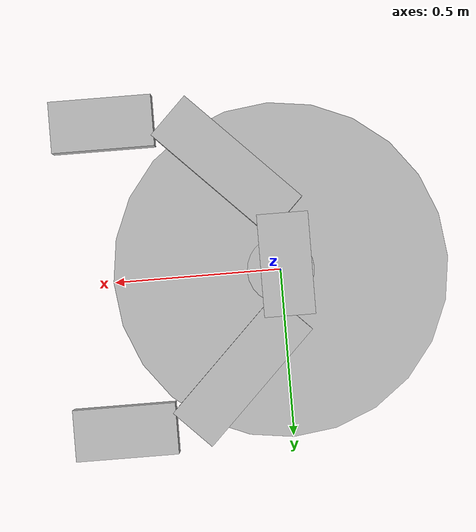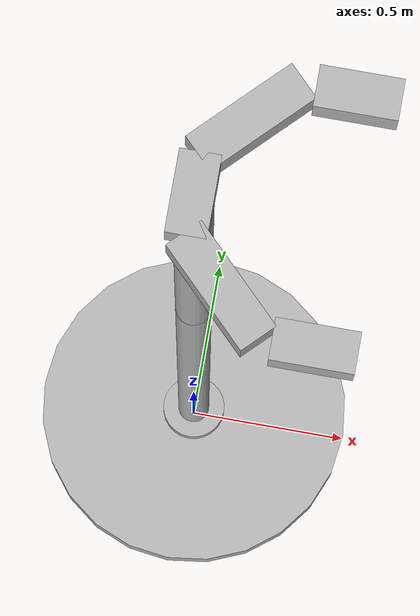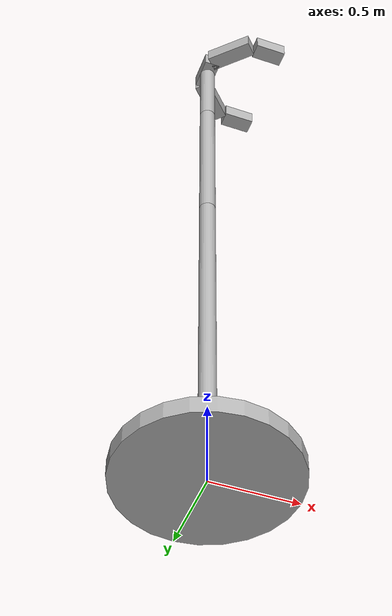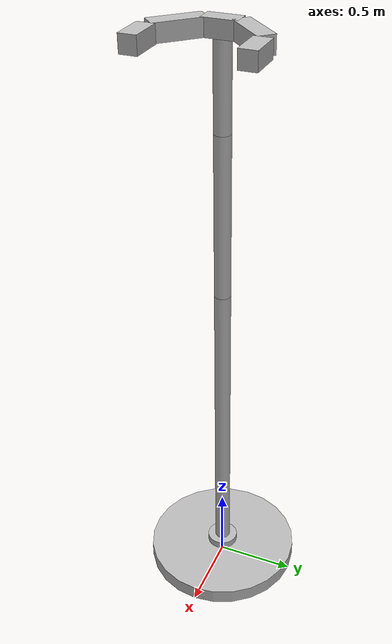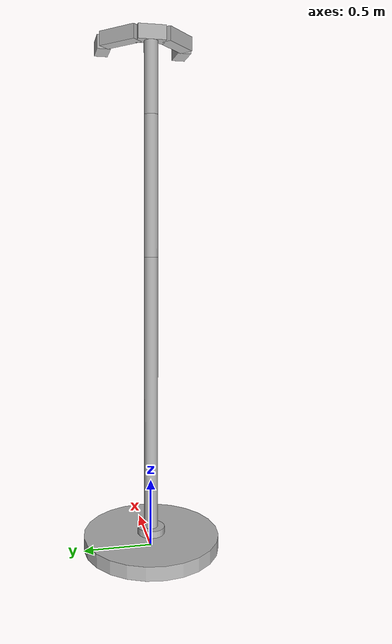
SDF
<?xml version='1.0'?>
<sdf version='1.4'>
    <model name="arm_robot">
        <static>false</static>
        <self_collide>1</self_collide>
        <link name='base'>
            <pose>0 0 .05 0 0 0</pose>
            <inertial>
                <mass>50.0</mass>
            </inertial>
            <collision name='collision'>
                <geometry>
                    <cylinder>
                        <radius>.5</radius>
                        <length>.1</length>
                    </cylinder>
                </geometry>
            </collision>

            <visual name='visual'>
                <geometry>
                    <cylinder>
                        <radius>.5</radius>
                        <length>.1</length>
                    </cylinder>
                </geometry>
            </visual>
        </link>
        <link name='arm1'>
            <pose>0 0 .125 0 0 0</pose>
            <inertial>
                <mass>.05</mass>
            </inertial>
            <collision name='collision'>
                <geometry>
                    <cylinder>
                        <radius>.1</radius>
                        <length>.05</length>
                    </cylinder>
                </geometry>
            </collision>

            <visual name='visual'>
                <geometry>
                    <cylinder>
                        <radius>.1</radius>
                        <length>.05</length>
                    </cylinder>
                </geometry>
            </visual>
        </link>

        <joint type="revolute" name="base_arm1_joint">
            <pose>0 0 -0.025 0 0 0</pose>
            <child>arm1</child>
            <parent>base</parent>
            <axis>
                <xyz>0 0 1</xyz>
                <dynamics>
                    <damping>
                        2.0
                    </damping>
                    <friction>
                        0.7
                    </friction>
                </dynamics>
                <limit>
                    <effort>100</effort>
                    <velocity>1.0</velocity>
                </limit>
            </axis>
        </joint>

        <link name='arm2'>
            <pose>0 0 1.15 0 0 0</pose>
            <inertial>
                <mass>1.0</mass>
            </inertial>
            <collision name='collision'>
                <geometry>
                    <cylinder>
                        <radius>.05</radius>
                        <length>2.0</length>
                    </cylinder>
                </geometry>
            </collision>

            <visual name='visual'>
                <geometry>
                    <cylinder>
                        <radius>.05</radius>
                        <length>2.0</length>
                    </cylinder>
                </geometry>
            </visual>
        </link>

         <joint type="revolute" name="arm1_arm2_joint">
            <pose>0 0 -1 0 0 0</pose>
            <child>arm2</child>
            <parent>arm1</parent>
            <axis>
                <xyz>1 0 0</xyz>
                <limit>
                        <lower>-1.0</lower>
                        <upper>1.0</upper>
                        <effort>100</effort>
                        <velocity>1.0</velocity>
                </limit>
                <dynamics>
                    <damping>
                        1.0
                    </damping>
                    <friction>
                        0.3
                    </friction>
                </dynamics>
            </axis>
        </joint>

        <link name='arm3'>
            <pose>0 0 2.65 0 0 0</pose>
            <inertial>
                <mass>0.5</mass>
            </inertial>
            <collision name='collision'>
                <geometry>
                    <cylinder>
                        <radius>.05</radius>
                        <length>1.0</length>
                    </cylinder>
                </geometry>
            </collision>

            <visual name='visual'>
                <geometry>
                    <cylinder>
                        <radius>.05</radius>
                        <length>1.0</length>
                    </cylinder>
                </geometry>
            </visual>
        </link>

         <joint type="revolute" name="arm2_arm3_joint">
            <pose>0 0 -0.5 0 0 0</pose>
            <child>arm3</child>
            <parent>arm2</parent>
            <axis>
                <xyz>1 0 0</xyz>
                <dynamics>
                    <damping>
                        1.0
                    </damping>
                    <friction>
                        0.3
                    </friction>
                </dynamics>
                <limit>
                    <effort>100</effort>
                    <velocity>1.0</velocity>
                </limit>
            </axis>
        </joint>

        <link name='arm4'>
            <pose>0 0 3.4 0 0 0</pose>
            <inertial>
                <mass>.25</mass>
            </inertial>
            <collision name='collision'>
                <geometry>
                    <cylinder>
                        <radius>.05</radius>
                        <length>.5</length>
                    </cylinder>
                </geometry>
            </collision>

            <visual name='visual'>
                <geometry>
                    <cylinder>
                        <radius>.05</radius>
                        <length>.5</length>
                    </cylinder>
                </geometry>
            </visual>
        </link>

         <joint type="revolute" name="arm3_arm4_joint">
            <pose>0 0 -0.25 0 0 0</pose>
            <child>arm4</child>
            <parent>arm3</parent>
            <axis>
                <xyz>1 0 0</xyz>
                <dynamics>
                    <damping>
                        1.0
                    </damping>
                    <friction>
                        0.3
                    </friction>
                </dynamics>
                <limit>
                    <effort>100</effort>
                    <velocity>1.0</velocity>
                </limit>
            </axis>
        </joint>

        <link name="arm5">
            <pose>0 0 3.66 0 0 0</pose>
            <inertial>
                <mass>.005</mass>
            </inertial>
            <collision name="collision">
                <geometry>
                    <cylinder>
                        <radius>.05</radius>
                        <length>.02</length>
                    </cylinder>
                </geometry>
            </collision>
            <visual name="visual">
                <geometry>
                    <cylinder>
                        <radius>.05</radius>
                        <length>.02</length>
                    </cylinder>
                </geometry>
            </visual>
        </link>

        <joint name="arm4_arm5_joint" type="revolute">
            <parent> arm4 </parent>
            <child> arm5 </child>
            <pose> 0 0 -0.01 0 0 0</pose>
            <axis>
                <xyz> 0 0 1  </xyz>
                <dynamics>
                    <damping>1.0</damping>
                    <friction>0.3</friction>
                </dynamics>
                <limit>
                    <effort>100</effort>
                    <velocity>1.0</velocity>
                </limit>
            </axis>
        </joint>

        <link name="palm">
            <pose>0.0 0.0 3.7 0 0 0</pose>
            <inertial>
                <inertia>
                    <ixx>0.01</ixx>
                    <ixy>0</ixy>
                    <ixz>0</ixz>
                    <iyy>0.01</iyy>
                    <iyz>0</iyz>
                    <izz>0.01</izz>
                </inertia>
                <mass>0.5</mass>
            </inertial>
            <collision name="collision">
                <geometry>
                    <box>
                        <size>0.1 0.2 0.1</size>
                    </box>
                </geometry>
            </collision>
            <visual name="visual">
                <geometry>
                    <box>
                        <size>0.1 0.2 0.1</size>
                    </box>
                </geometry>
                <material>
                    <script>Gazebo/Red</script>
                </material>
            </visual>
        </link>
        <joint name="palm_arm5" type="revolute">
            <child>arm5</child>
            <parent>palm</parent>
            <pose> 0 0 -0.01 0 0 0</pose>
            <axis>
                <xyz>0 0 1</xyz>
                <dynamics>
                    <damping>1.0</damping>
                    <friction>0.3</friction>
                </dynamics>
                <limit>
                    <effort>100</effort>
                    <velocity>1.0</velocity>
                </limit>
            </axis>
        </joint>
        <link name="left_finger">
            <pose>0.1 0.2 3.7 0 0 -0.78539</pose>
            <inertial>
                <inertia>
                    <ixx>0.01</ixx>
                    <ixy>0</ixy>
                    <ixz>0</ixz>
                    <iyy>0.01</iyy>
                    <iyz>0</iyz>
                    <izz>0.01</izz>
                </inertia>
                <mass>0.1</mass>
            </inertial>
            <collision name="collision">
                <geometry>
                    <box>
                        <size>0.1 0.3 0.1</size>
                    </box>
                </geometry>
            </collision>
            <visual name="visual">
                <geometry>
                    <box>
                        <size>0.1 0.3 0.1</size>
                    </box>
                </geometry>
                <material>
                    <script>Gazebo/Blue</script>
                </material>
            </visual>
        </link>
        <link name="left_finger_tip">
            <pose>0.336 0.3 3.7 0 0 1.5707</pose>
            <inertial>
                <inertia>
                    <ixx>0.01</ixx>
                    <ixy>0</ixy>
                    <ixz>0</ixz>
                    <iyy>0.01</iyy>
                    <iyz>0</iyz>
                    <izz>0.01</izz>
                </inertia>
                <mass>0.1</mass>
            </inertial>
            <collision name="collision">
                <geometry>
                    <box>
                        <size>0.1 0.2 0.1</size>
                    </box>
                </geometry>
            </collision>
            <visual name="visual">
                <geometry>
                    <box>
                        <size>0.1 0.2 0.1</size>
                    </box>
                </geometry>
                <material>
                    <script>Gazebo/Blue</script>
                </material>
            </visual>
        </link>
        <link name="right_finger">
            <pose>0.1 -0.2 3.7 0 0 .78539</pose>
            <inertial>
                <inertia>
                    <ixx>0.01</ixx>
                    <ixy>0</ixy>
                    <ixz>0</ixz>
                    <iyy>0.01</iyy>
                    <iyz>0</iyz>
                    <izz>0.01</izz>
                </inertia>
                <mass>0.1</mass>
            </inertial>
            <collision name="collision">
                <geometry>
                    <box>
                        <size>0.1 0.3 0.1</size>
                    </box>
                </geometry>
            </collision>
            <visual name="visual">
                <geometry>
                    <box>
                        <size>0.1 0.3 0.1</size>
                    </box>
                </geometry>
                <material>
                    <script>Gazebo/Green</script>
                </material>
            </visual>
        </link>
        <link name="right_finger_tip">
            <pose>0.336 -0.3 3.7 0 0 1.5707</pose>
            <inertial>
                <inertia>
                    <ixx>0.01</ixx>
                    <ixy>0</ixy>
                    <ixz>0</ixz>
                    <iyy>0.01</iyy>
                    <iyz>0</iyz>
                    <izz>0.01</izz>
                </inertia>
                <mass>0.1</mass>
            </inertial>
            <collision name="collision">
                <geometry>
                    <box>
                        <size>0.1 0.2 0.1</size>
                    </box>
                </geometry>
            </collision>
            <visual name="visual">
                <geometry>
                    <box>
                        <size>0.1 0.2 0.1</size>
                    </box>
                </geometry>
                <material>
                    <script>Gazebo/Green</script>
                </material>
            </visual>
        </link>
        <joint name="palm_left_finger" type="revolute">
            <pose>0 -0.15 0 0 0 0</pose>
            <child>left_finger</child>
            <parent>palm</parent>
            <axis>
                <limit>
                    <lower>-0.4</lower>
                    <upper>0.4</upper>
                </limit>
                <xyz>0 0 1</xyz>
            </axis>
        </joint>
        <joint name="left_finger_tip_joint" type="revolute">
            <pose>0 0.1 0 0 0 0</pose>
            <child>left_finger_tip</child>
            <parent>left_finger</parent>
            <axis>
                <limit>
                    <lower>-0.4</lower>
                    <upper>0.4</upper>
                </limit>
                <xyz>0 0 1</xyz>
            </axis>
        </joint>
        <joint name="palm_right_finger" type="revolute">
            <pose>0 0.15 0 0 0 0</pose>
            <child>right_finger</child>
            <parent>palm</parent>
            <axis>
                <limit>
                    <lower>-0.4</lower>
                    <upper>0.4</upper>
                </limit>
                <xyz>0 0 1</xyz>
            </axis>
        </joint>
        <joint name="right_finger_tip_joint" type="revolute">
            <pose>0 0.1 0 0 0 0</pose>
            <child>right_finger_tip</child>
            <parent>right_finger</parent>
            <axis>
                <limit>
                    <lower>-0.4</lower>
                    <upper>0.4</upper>
                </limit>
                <xyz>0 0 1</xyz>
            </axis>
        </joint>
        <plugin name="arm_control" filename="libarm_gazebo.so" />
    </model>
</sdf>
